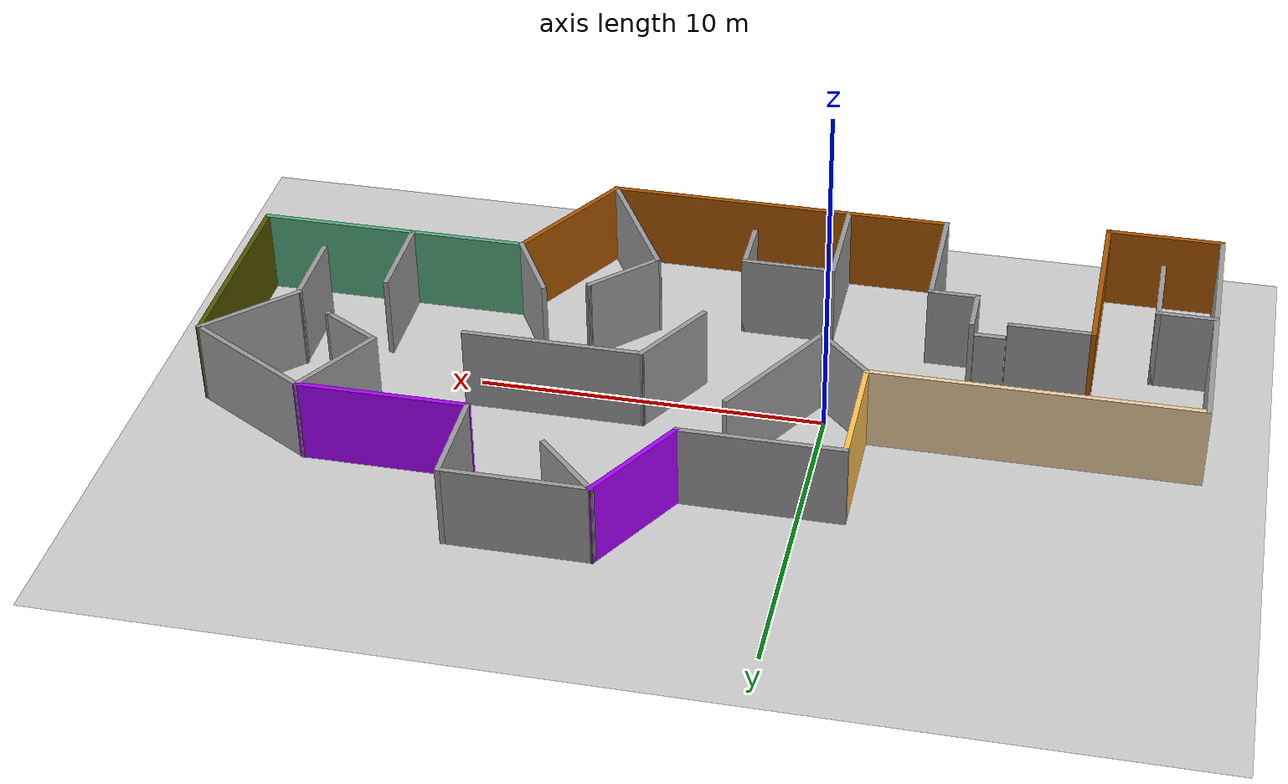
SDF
<sdf version="1.6">
 <world name="default">
  <light name="sun" type="directional">
   <pose>0 0 10 0 -0 0</pose>
   <diffuse>0.8 0.8 0.8 1</diffuse>
   <specular>0.2 0.2 0.2 1</specular>
   <attenuation>
    <range>1000</range>
    <constant>0.9</constant>
    <linear>0.01</linear>
    <quadratic>0.001</quadratic>
   </attenuation>
   <direction>-0.5 0.1 -0.9</direction>
  </light>
  <model name="ground_plane">
   <static>1</static>
   <link name="link">
    <collision name="collision">
     <geometry><plane><normal>0 0 1</normal><size>100 100</size></plane></geometry>
     <surface>
      <contact><collide_bitmask>65535</collide_bitmask></contact>
      <friction><ode><mu>100</mu><mu2>50</mu2></ode></friction>
     </surface>
    </collision>
    <visual name="visual">
     <cast_shadows>0</cast_shadows>
     <geometry><plane><normal>0 0 1</normal><size>100 100</size></plane></geometry>
     <material>
      <script><uri>file://media/materials/scripts/gazebo.material</uri><name>Gazebo/Grey</name></script>
     </material>
    </visual>
   </link>
  </model>
  <gravity>0 0 -9.8</gravity>
  <magnetic_field>6e-06 2.3e-05 -4.2e-05</magnetic_field>
  <atmosphere type="adiabatic"/>
  <physics name="default_physics" default="0" type="ode">
   <max_step_size>0.001</max_step_size>
   <real_time_factor>1</real_time_factor>
   <real_time_update_rate>1000</real_time_update_rate>
  </physics>
  <scene><ambient>0.4 0.4 0.4 1</ambient><background>0.7 0.7 0.7 1</background><shadows>1</shadows></scene>
  <spherical_coordinates>
   <surface_model>EARTH_WGS84</surface_model>
   <latitude_deg>0</latitude_deg>
   <longitude_deg>0</longitude_deg>
   <elevation>0</elevation>
   <heading_deg>0</heading_deg>
  </spherical_coordinates>
  <model name="Building">
   <pose>3.48268 -0.26936 0 0 -0 0</pose>
   <link name="Door_0">
    <collision name="Door_0_Collision">
     <geometry><box><size>0.9 0.17 2</size></box></geometry>
     <pose>0 0 1 0 -0 0</pose>
    </collision>
    <visual name="Door_0_Visual">
     <pose>0 0 1 0 -0 0</pose>
     <geometry><box><size>0.9 0.17 2</size></box></geometry>
     <material>
      <script><uri>file://media/materials/scripts/gazebo.material</uri><name>Gazebo/Grey</name></script>
     </material>
    </visual>
    <pose>-7.81872 -2.12521 0 0 -0 0</pose>
   </link>
   <link name="Wall_0">
    <collision name="Wall_0_Collision">
     <geometry><box><size>1.5 0.15 2.5</size></box></geometry>
     <pose>0 0 1.25 0 -0 0</pose>
    </collision>
    <visual name="Wall_0_Visual">
     <pose>0 0 1.25 0 -0 0</pose>
     <geometry><box><size>1.5 0.15 2.5</size></box></geometry>
     <material>
      <script><uri>file://media/materials/scripts/gazebo.material</uri><name>Gazebo/Grey</name></script>
      <ambient>1 1 1 1</ambient>
     </material>
     <meta><layer>0</layer></meta>
    </visual>
    <pose>-7.30268 -2.61564 0 0 0 -1.5708</pose>
   </link>
   <link name="Wall_1">
    <collision name="Wall_1_Collision">
     <geometry><box><size>1.5 0.15 2.5</size></box></geometry>
     <pose>0 0 1.25 0 -0 0</pose>
    </collision>
    <visual name="Wall_1_Visual">
     <pose>0 0 1.25 0 -0 0</pose>
     <geometry><box><size>1.5 0.15 2.5</size></box></geometry>
     <material>
      <script><uri>file://media/materials/scripts/gazebo.material</uri><name>Gazebo/Grey</name></script>
      <ambient>1 1 1 1</ambient>
     </material>
     <meta><layer>0</layer></meta>
    </visual>
    <pose>-6.62768 -3.29064 0 0 -0 0</pose>
   </link>
   <link name="Wall_10">
    <collision name="Wall_10_Collision">
     <geometry><box><size>4.25 0.15 2.5</size></box></geometry>
     <pose>0 0 1.25 0 -0 0</pose>
    </collision>
    <visual name="Wall_10_Visual">
     <pose>0 0 1.25 0 -0 0</pose>
     <geometry><box><size>4.25 0.15 2.5</size></box></geometry>
     <material>
      <script><uri>file://media/materials/scripts/gazebo.material</uri><name>Gazebo/Grey</name></script>
      <ambient>1 1 1 1</ambient>
     </material>
     <meta><layer>0</layer></meta>
    </visual>
    <pose>3.59661 7.41006 0 0 -0 3.14159</pose>
   </link>
   <link name="Wall_11">
    <collision name="Wall_11_Collision">
     <geometry><box><size>3.5 0.15 2.5</size></box></geometry>
     <pose>0 0 1.25 0 -0 0</pose>
    </collision>
    <visual name="Wall_11_Visual">
     <pose>0 0 1.25 0 -0 0</pose>
     <geometry><box><size>3.5 0.15 2.5</size></box></geometry>
     <material>
      <script><uri>file://media/materials/scripts/gazebo.material</uri><name>Gazebo/Grey</name></script>
      <ambient>0.666667 0 1 1</ambient>
     </material>
     <meta><layer>0</layer></meta>
    </visual>
    <pose>0.709115 5.95947 0 0 0 -2.0944</pose>
   </link>
   <link name="Wall_12">
    <collision name="Wall_12_Collision">
     <geometry><box><size>4.75 0.15 2.5</size></box></geometry>
     <pose>0 0 1.25 0 -0 0</pose>
    </collision>
    <visual name="Wall_12_Visual">
     <pose>0 0 1.25 0 -0 0</pose>
     <geometry><box><size>4.75 0.15 2.5</size></box></geometry>
     <material>
      <script><uri>file://media/materials/scripts/gazebo.material</uri><name>Gazebo/Grey</name></script>
      <ambient>1 1 1 1</ambient>
     </material>
     <meta><layer>0</layer></meta>
    </visual>
    <pose>-2.42839 4.50887 0 0 -0 3.14159</pose>
   </link>
   <link name="Wall_13">
    <collision name="Wall_13_Collision">
     <geometry><box><size>3.75 0.15 2.5</size></box></geometry>
     <pose>0 0 1.25 0 -0 0</pose>
    </collision>
    <visual name="Wall_13_Visual">
     <pose>0 0 1.25 0 -0 0</pose>
     <geometry><box><size>3.75 0.15 2.5</size></box></geometry>
     <material>
      <script><uri>file://media/materials/scripts/gazebo.material</uri><name>Gazebo/Grey</name></script>
      <ambient>1 0.764706 0.305882 1</ambient>
     </material>
     <meta><layer>0</layer></meta>
    </visual>
    <pose>-4.72839 2.70887 0 0 0 -1.5708</pose>
   </link>
   <link name="Wall_14">
    <collision name="Wall_14_Collision">
     <geometry><box><size>9.5 0.15 2.5</size></box></geometry>
     <pose>0 0 1.25 0 -0 0</pose>
    </collision>
    <visual name="Wall_14_Visual">
     <pose>0 0 1.25 0 -0 0</pose>
     <geometry><box><size>9.5 0.15 2.5</size></box></geometry>
     <material>
      <script><uri>file://media/materials/scripts/gazebo.material</uri><name>Gazebo/Grey</name></script>
      <ambient>0.921569 0.807843 0.615686 1</ambient>
     </material>
     <meta><layer>0</layer></meta>
    </visual>
    <pose>-9.40339 0.908875 0 0 -0 3.14159</pose>
   </link>
   <link name="Wall_15">
    <collision name="Wall_15_Collision">
     <geometry><box><size>8.5 0.15 2.5</size></box></geometry>
     <pose>0 0 1.25 0 -0 0</pose>
    </collision>
    <visual name="Wall_15_Visual">
     <pose>0 0 1.25 0 -0 0</pose>
     <geometry><box><size>8.5 0.15 2.5</size></box></geometry>
     <material>
      <script><uri>file://media/materials/scripts/gazebo.material</uri><name>Gazebo/Grey</name></script>
      <ambient>1 1 1 1</ambient>
     </material>
     <meta><layer>0</layer></meta>
    </visual>
    <pose>-14.0784 -3.26613 0 0 0 -1.5708</pose>
   </link>
   <link name="Wall_16">
    <collision name="Wall_16_Collision">
     <geometry><box><size>3.5 0.15 2.5</size></box></geometry>
     <pose>0 0 1.25 0 -0 0</pose>
    </collision>
    <visual name="Wall_16_Visual">
     <pose>0 0 1.25 0 -0 0</pose>
     <geometry><box><size>3.5 0.15 2.5</size></box></geometry>
     <material>
      <script><uri>file://media/materials/scripts/gazebo.material</uri><name>Gazebo/Grey</name></script>
      <ambient>0.666667 0.333333 0 1</ambient>
     </material>
     <meta><layer>0</layer></meta>
    </visual>
    <pose>-12.4034 -7.44113 0 0 -0 0</pose>
   </link>
   <link name="Wall_17">
    <collision name="Wall_17_Collision">
     <geometry><box><size>5.5 0.15 2.5</size></box></geometry>
     <pose>0 0 1.25 0 -0 0</pose>
    </collision>
    <visual name="Wall_17_Visual">
     <pose>0 0 1.25 0 -0 0</pose>
     <geometry><box><size>5.5 0.15 2.5</size></box></geometry>
     <material>
      <script><uri>file://media/materials/scripts/gazebo.material</uri><name>Gazebo/Grey</name></script>
      <ambient>0.666667 0.333333 0 1</ambient>
     </material>
     <meta><layer>0</layer></meta>
    </visual>
    <pose>-10.7284 -4.76612 0 0 -0 1.5708</pose>
   </link>
   <link name="Wall_18">
    <collision name="Wall_18_Collision">
     <geometry><box><size>2.5 0.15 2.5</size></box></geometry>
     <pose>0 0 1.25 0 -0 0</pose>
    </collision>
    <visual name="Wall_18_Visual">
     <pose>0 0 1.25 0 -0 0</pose>
     <geometry><box><size>2.5 0.15 2.5</size></box></geometry>
     <material>
      <script><uri>file://media/materials/scripts/gazebo.material</uri><name>Gazebo/Grey</name></script>
      <ambient>1 1 1 1</ambient>
     </material>
     <meta><layer>0</layer></meta>
    </visual>
    <pose>-9.55339 -2.09112 0 0 -0 0</pose>
   </link>
   <link name="Wall_19">
    <collision name="Wall_19_Collision">
     <geometry><box><size>0.16 0.15 2.5</size></box></geometry>
     <pose>0 0 1.25 0 -0 0</pose>
    </collision>
    <visual name="Wall_19_Visual">
     <pose>0 0 1.25 0 -0 0</pose>
     <geometry><box><size>0.16 0.15 2.5</size></box></geometry>
     <material>
      <script><uri>file://media/materials/scripts/gazebo.material</uri><name>Gazebo/Grey</name></script>
      <ambient>1 1 1 1</ambient>
     </material>
     <meta><layer>0</layer></meta>
    </visual>
    <pose>-8.37339 -2.09112 0 0 -0 0</pose>
   </link>
   <link name="Wall_2">
    <collision name="Wall_2_Collision">
     <geometry><box><size>3.75 0.15 2.5</size></box></geometry>
     <pose>0 0 1.25 0 -0 0</pose>
    </collision>
    <visual name="Wall_2_Visual">
     <pose>0 0 1.25 0 -0 0</pose>
     <geometry><box><size>3.75 0.15 2.5</size></box></geometry>
     <material>
      <script><uri>file://media/materials/scripts/gazebo.material</uri><name>Gazebo/Grey</name></script>
      <ambient>1 1 1 1</ambient>
     </material>
     <meta><layer>0</layer></meta>
    </visual>
    <pose>-5.95268 -5.09065 0 0 0 -1.5708</pose>
   </link>
   <link name="Wall_21">
    <collision name="Wall_21_Collision">
     <geometry><box><size>3.25 0.15 2.5</size></box></geometry>
     <pose>0 0 1.25 0 -0 0</pose>
    </collision>
    <visual name="Wall_21_Visual">
     <pose>0 0 1.25 0 -0 0</pose>
     <geometry><box><size>3.25 0.15 2.5</size></box></geometry>
     <material>
      <script><uri>file://media/materials/scripts/gazebo.material</uri><name>Gazebo/Grey</name></script>
      <ambient>1 1 1 1</ambient>
     </material>
     <meta><layer>0</layer></meta>
    </visual>
    <pose>-3.01531 -5.33298 0 0 -0 1.5708</pose>
   </link>
   <link name="Wall_22">
    <collision name="Wall_22_Collision">
     <geometry><box><size>2.75 0.15 2.5</size></box></geometry>
     <pose>0 0 1.25 0 -0 0</pose>
    </collision>
    <visual name="Wall_22_Visual">
     <pose>0 0 1.25 0 -0 0</pose>
     <geometry><box><size>2.75 0.15 2.5</size></box></geometry>
     <material>
      <script><uri>file://media/materials/scripts/gazebo.material</uri><name>Gazebo/Grey</name></script>
      <ambient>1 1 1 1</ambient>
     </material>
     <meta><layer>0</layer></meta>
    </visual>
    <pose>-1.71531 -3.78298 0 0 -0 0</pose>
   </link>
   <link name="Wall_23">
    <collision name="Wall_23_Collision">
     <geometry><box><size>1.75 0.15 2.5</size></box></geometry>
     <pose>0 0 1.25 0 -0 0</pose>
    </collision>
    <visual name="Wall_23_Visual">
     <pose>0 0 1.25 0 -0 0</pose>
     <geometry><box><size>1.75 0.15 2.5</size></box></geometry>
     <material>
      <script><uri>file://media/materials/scripts/gazebo.material</uri><name>Gazebo/Grey</name></script>
      <ambient>1 1 1 1</ambient>
     </material>
     <meta><layer>0</layer></meta>
    </visual>
    <pose>-0.415306 -4.58298 0 0 0 -1.5708</pose>
   </link>
   <link name="Wall_25">
    <collision name="Wall_25_Collision">
     <geometry><box><size>2.25 0.15 2.5</size></box></geometry>
     <pose>0 0 1.25 0 -0 0</pose>
    </collision>
    <visual name="Wall_25_Visual">
     <pose>0 0 1.25 0 -0 0</pose>
     <geometry><box><size>2.25 0.15 2.5</size></box></geometry>
     <material>
      <script><uri>file://media/materials/scripts/gazebo.material</uri><name>Gazebo/Grey</name></script>
      <ambient>1 1 1 1</ambient>
     </material>
     <meta><layer>0</layer></meta>
    </visual>
    <pose>-3.98592 0.166412 0 0 0 -0.785398</pose>
   </link>
   <link name="Wall_26">
    <collision name="Wall_26_Collision">
     <geometry><box><size>4.25 0.15 2.5</size></box></geometry>
     <pose>0 0 1.25 0 -0 0</pose>
    </collision>
    <visual name="Wall_26_Visual">
     <pose>0 0 1.25 0 -0 0</pose>
     <geometry><box><size>4.25 0.15 2.5</size></box></geometry>
     <material>
      <script><uri>file://media/materials/scripts/gazebo.material</uri><name>Gazebo/Grey</name></script>
      <ambient>1 1 1 1</ambient>
     </material>
     <meta><layer>0</layer></meta>
    </visual>
    <pose>-2.21846 1.1993 0 0 -0 1.0472</pose>
   </link>
   <link name="Wall_28">
    <collision name="Wall_28_Collision">
     <geometry><box><size>2.5 0.15 2.5</size></box></geometry>
     <pose>0 0 1.25 0 -0 0</pose>
    </collision>
    <visual name="Wall_28_Visual">
     <pose>0 0 1.25 0 -0 0</pose>
     <geometry><box><size>2.5 0.15 2.5</size></box></geometry>
     <material>
      <script><uri>file://media/materials/scripts/gazebo.material</uri><name>Gazebo/Grey</name></script>
      <ambient>1 1 1 1</ambient>
     </material>
     <meta><layer>0</layer></meta>
    </visual>
    <pose>2.37747 6.57921 0 0 0 -0.785398</pose>
   </link>
   <link name="Wall_3">
    <collision name="Wall_3_Collision">
     <geometry><box><size>10.25 0.15 2.5</size></box></geometry>
     <pose>0 0 1.25 0 -0 0</pose>
    </collision>
    <visual name="Wall_3_Visual">
     <pose>0 0 1.25 0 -0 0</pose>
     <geometry><box><size>10.25 0.15 2.5</size></box></geometry>
     <material>
      <script><uri>file://media/materials/scripts/gazebo.material</uri><name>Gazebo/Grey</name></script>
      <ambient>0.666667 0.333333 0 1</ambient>
     </material>
     <meta><layer>0</layer></meta>
    </visual>
    <pose>-0.902681 -6.89064 0 0 -0 0</pose>
   </link>
   <link name="Wall_30">
    <collision name="Wall_30_Collision">
     <geometry><box><size>3 0.15 2.5</size></box></geometry>
     <pose>0 0 1.25 0 -0 0</pose>
    </collision>
    <visual name="Wall_30_Visual">
     <pose>0 0 1.25 0 -0 0</pose>
     <geometry><box><size>3 0.15 2.5</size></box></geometry>
     <material>
      <script><uri>file://media/materials/scripts/gazebo.material</uri><name>Gazebo/Grey</name></script>
      <ambient>1 1 1 1</ambient>
     </material>
     <meta><layer>0</layer></meta>
    </visual>
    <pose>9.78411 3.32597 0 0 0 -2.0944</pose>
   </link>
   <link name="Wall_32">
    <collision name="Wall_32_Collision">
     <geometry><box><size>3.25 0.15 2.5</size></box></geometry>
     <pose>0 0 1.25 0 -0 0</pose>
    </collision>
    <visual name="Wall_32_Visual">
     <pose>0 0 1.25 0 -0 0</pose>
     <geometry><box><size>3.25 0.15 2.5</size></box></geometry>
     <material>
      <script><uri>file://media/materials/scripts/gazebo.material</uri><name>Gazebo/Grey</name></script>
      <ambient>1 1 1 1</ambient>
     </material>
     <meta><layer>0</layer></meta>
    </visual>
    <pose>12.9513 1.41404 0 0 0 -2.35619</pose>
   </link>
   <link name="Wall_33">
    <collision name="Wall_33_Collision">
     <geometry><box><size>0.16 0.15 2.5</size></box></geometry>
     <pose>0 0 1.25 0 -0 0</pose>
    </collision>
    <visual name="Wall_33_Visual">
     <pose>0 0 1.25 0 -0 0</pose>
     <geometry><box><size>0.16 0.15 2.5</size></box></geometry>
     <material>
      <script><uri>file://media/materials/scripts/gazebo.material</uri><name>Gazebo/Grey</name></script>
      <ambient>1 1 1 1</ambient>
     </material>
     <meta><layer>0</layer></meta>
    </visual>
    <pose>11.8603 0.318029 0 0 -0 0</pose>
   </link>
   <link name="Wall_34">
    <collision name="Wall_34_Collision">
     <geometry><box><size>0.16 0.15 2.5</size></box></geometry>
     <pose>0 0 1.25 0 -0 0</pose>
    </collision>
    <visual name="Wall_34_Visual">
     <pose>0 0 1.25 0 -0 0</pose>
     <geometry><box><size>0.16 0.15 2.5</size></box></geometry>
     <material>
      <script><uri>file://media/materials/scripts/gazebo.material</uri><name>Gazebo/Grey</name></script>
      <ambient>1 1 1 1</ambient>
     </material>
     <meta><layer>0</layer></meta>
    </visual>
    <pose>11.8603 0.318029 0 0 -0 3.14159</pose>
   </link>
   <link name="Wall_36">
    <collision name="Wall_36_Collision">
     <geometry><box><size>2.75 0.15 2.5</size></box></geometry>
     <pose>0 0 1.25 0 -0 0</pose>
    </collision>
    <visual name="Wall_36_Visual">
     <pose>0 0 1.25 0 -0 0</pose>
     <geometry><box><size>2.75 0.15 2.5</size></box></geometry>
     <material>
      <script><uri>file://media/materials/scripts/gazebo.material</uri><name>Gazebo/Grey</name></script>
      <ambient>1 1 1 1</ambient>
     </material>
     <meta><layer>0</layer></meta>
    </visual>
    <pose>9.54615 -2.00063 0 0 -0 1.5708</pose>
   </link>
   <link name="Wall_38">
    <collision name="Wall_38_Collision">
     <geometry><box><size>2.5 0.15 2.5</size></box></geometry>
     <pose>0 0 1.25 0 -0 0</pose>
    </collision>
    <visual name="Wall_38_Visual">
     <pose>0 0 1.25 0 -0 0</pose>
     <geometry><box><size>2.5 0.15 2.5</size></box></geometry>
     <material>
      <script><uri>file://media/materials/scripts/gazebo.material</uri><name>Gazebo/Grey</name></script>
      <ambient>1 1 1 1</ambient>
     </material>
     <meta><layer>0</layer></meta>
    </visual>
    <pose>5.60982 -2.32236 0 0 -0 2.0944</pose>
   </link>
   <link name="Wall_4">
    <collision name="Wall_4_Collision">
     <geometry><box><size>4.25 0.15 2.5</size></box></geometry>
     <pose>0 0 1.25 0 -0 0</pose>
    </collision>
    <visual name="Wall_4_Visual">
     <pose>0 0 1.25 0 -0 0</pose>
     <geometry><box><size>4.25 0.15 2.5</size></box></geometry>
     <material>
      <script><uri>file://media/materials/scripts/gazebo.material</uri><name>Gazebo/Grey</name></script>
      <ambient>0.666667 0.333333 0 1</ambient>
     </material>
     <meta><layer>0</layer></meta>
    </visual>
    <pose>5.17232 -5.11529 0 0 -0 1.0472</pose>
   </link>
   <link name="Wall_40">
    <collision name="Wall_40_Collision">
     <geometry><box><size>4.25 0.15 2.5</size></box></geometry>
     <pose>0 0 1.25 0 -0 0</pose>
    </collision>
    <visual name="Wall_40_Visual">
     <pose>0 0 1.25 0 -0 0</pose>
     <geometry><box><size>4.25 0.15 2.5</size></box></geometry>
     <material>
      <script><uri>file://media/materials/scripts/gazebo.material</uri><name>Gazebo/Grey</name></script>
      <ambient>1 1 1 1</ambient>
     </material>
     <meta><layer>0</layer></meta>
    </visual>
    <pose>3.12232 -5.11529 0 0 -0 2.0944</pose>
   </link>
   <link name="Wall_41">
    <collision name="Wall_41_Collision">
     <geometry><box><size>2.5 0.15 2.5</size></box></geometry>
     <pose>0 0 1.25 0 -0 0</pose>
    </collision>
    <visual name="Wall_41_Visual">
     <pose>0 0 1.25 0 -0 0</pose>
     <geometry><box><size>2.5 0.15 2.5</size></box></geometry>
     <material>
      <script><uri>file://media/materials/scripts/gazebo.material</uri><name>Gazebo/Grey</name></script>
      <ambient>1 1 1 1</ambient>
     </material>
     <meta><layer>0</layer></meta>
    </visual>
    <pose>2.92817 -2.50909 0 0 -0 0.785398</pose>
   </link>
   <link name="Wall_42">
    <collision name="Wall_42_Collision">
     <geometry><box><size>0.16 0.15 2.5</size></box></geometry>
     <pose>0 0 1.25 0 -0 0</pose>
    </collision>
    <visual name="Wall_42_Visual">
     <pose>0 0 1.25 0 -0 0</pose>
     <geometry><box><size>0.16 0.15 2.5</size></box></geometry>
     <material>
      <script><uri>file://media/materials/scripts/gazebo.material</uri><name>Gazebo/Grey</name></script>
      <ambient>1 1 1 1</ambient>
     </material>
     <meta><layer>0</layer></meta>
    </visual>
    <pose>3.76402 -1.67824 0 0 -0 0</pose>
   </link>
   <link name="Wall_44">
    <collision name="Wall_44_Collision">
     <geometry><box><size>5.25 0.15 2.5</size></box></geometry>
     <pose>0 0 1.25 0 -0 0</pose>
    </collision>
    <visual name="Wall_44_Visual">
     <pose>0 0 1.25 0 -0 0</pose>
     <geometry><box><size>5.25 0.15 2.5</size></box></geometry>
     <material>
      <script><uri>file://media/materials/scripts/gazebo.material</uri><name>Gazebo/Grey</name></script>
      <ambient>1 1 1 1</ambient>
     </material>
     <meta><layer>0</layer></meta>
    </visual>
    <pose>4.09404 1.30523 0 0 -0 0</pose>
   </link>
   <link name="Wall_46">
    <collision name="Wall_46_Collision">
     <geometry><box><size>2.75 0.15 2.5</size></box></geometry>
     <pose>0 0 1.25 0 -0 0</pose>
    </collision>
    <visual name="Wall_46_Visual">
     <pose>0 0 1.25 0 -0 0</pose>
     <geometry><box><size>2.75 0.15 2.5</size></box></geometry>
     <material>
      <script><uri>file://media/materials/scripts/gazebo.material</uri><name>Gazebo/Grey</name></script>
      <ambient>1 1 1 1</ambient>
     </material>
     <meta><layer>0</layer></meta>
    </visual>
    <pose>0.894038 0.179399 0 0 0 -2.0944</pose>
   </link>
   <link name="Wall_48">
    <collision name="Wall_48_Collision">
     <geometry><box><size>1.75 0.15 2.5</size></box></geometry>
     <pose>0 0 1.25 0 -0 0</pose>
    </collision>
    <visual name="Wall_48_Visual">
     <pose>0 0 1.25 0 -0 0</pose>
     <geometry><box><size>1.75 0.15 2.5</size></box></geometry>
     <material>
      <script><uri>file://media/materials/scripts/gazebo.material</uri><name>Gazebo/Grey</name></script>
      <ambient>1 1 1 1</ambient>
     </material>
     <meta><layer>0</layer></meta>
    </visual>
    <pose>-13.2415 -3.48673 0 0 -0 0</pose>
   </link>
   <link name="Wall_49">
    <collision name="Wall_49_Collision">
     <geometry><box><size>2.5 0.15 2.5</size></box></geometry>
     <pose>0 0 1.25 0 -0 0</pose>
    </collision>
    <visual name="Wall_49_Visual">
     <pose>0 0 1.25 0 -0 0</pose>
     <geometry><box><size>2.5 0.15 2.5</size></box></geometry>
     <material>
      <script><uri>file://media/materials/scripts/gazebo.material</uri><name>Gazebo/Grey</name></script>
      <ambient>1 1 1 1</ambient>
     </material>
     <meta><layer>0</layer></meta>
    </visual>
    <pose>-12.4415 -4.66173 0 0 0 -1.5708</pose>
   </link>
   <link name="Wall_5">
    <collision name="Wall_5_Collision">
     <geometry><box><size>8 0.15 2.5</size></box></geometry>
     <pose>0 0 1.25 0 -0 0</pose>
    </collision>
    <visual name="Wall_5_Visual">
     <pose>0 0 1.25 0 -0 0</pose>
     <geometry><box><size>8 0.15 2.5</size></box></geometry>
     <material>
      <script><uri>file://media/materials/scripts/gazebo.material</uri><name>Gazebo/Grey</name></script>
      <ambient>0.333333 0.666667 0.498039 1</ambient>
     </material>
     <meta><layer>0</layer></meta>
    </visual>
    <pose>10.1223 -3.33994 0 0 -0 0</pose>
   </link>
   <link name="Wall_51">
    <collision name="Wall_51_Collision">
     <geometry><box><size>2 0.15 2.5</size></box></geometry>
     <pose>0 0 1.25 0 -0 0</pose>
    </collision>
    <visual name="Wall_51_Visual">
     <pose>0 0 1.25 0 -0 0</pose>
     <geometry><box><size>2 0.15 2.5</size></box></geometry>
     <material>
      <script><uri>file://media/materials/scripts/gazebo.material</uri><name>Gazebo/Grey</name></script>
      <ambient>1 1 1 1</ambient>
     </material>
     <meta><layer>0</layer></meta>
    </visual>
    <pose>9.87269 1.62939 0 0 0 -0.523599</pose>
   </link>
   <link name="Wall_52">
    <collision name="Wall_52_Collision">
     <geometry><box><size>0.16 0.15 2.5</size></box></geometry>
     <pose>0 0 1.25 0 -0 0</pose>
    </collision>
    <visual name="Wall_52_Visual">
     <pose>0 0 1.25 0 -0 0</pose>
     <geometry><box><size>0.16 0.15 2.5</size></box></geometry>
     <material>
      <script><uri>file://media/materials/scripts/gazebo.material</uri><name>Gazebo/Grey</name></script>
      <ambient>1 1 1 1</ambient>
     </material>
     <meta><layer>0</layer></meta>
    </visual>
    <pose>10.6788 1.16689 0 0 -0 0</pose>
   </link>
   <link name="Wall_54">
    <collision name="Wall_54_Collision">
     <geometry><box><size>2.5 0.15 2.5</size></box></geometry>
     <pose>0 0 1.25 0 -0 0</pose>
    </collision>
    <visual name="Wall_54_Visual">
     <pose>0 0 1.25 0 -0 0</pose>
     <geometry><box><size>2.5 0.15 2.5</size></box></geometry>
     <material>
      <script><uri>file://media/materials/scripts/gazebo.material</uri><name>Gazebo/Grey</name></script>
      <ambient>1 1 1 1</ambient>
     </material>
     <meta><layer>0</layer></meta>
    </visual>
    <pose>11.8653 -0.856971 0 0 0 -1.5708</pose>
   </link>
   <link name="Wall_6">
    <collision name="Wall_6_Collision">
     <geometry><box><size>6 0.15 2.5</size></box></geometry>
     <pose>0 0 1.25 0 -0 0</pose>
    </collision>
    <visual name="Wall_6_Visual">
     <pose>0 0 1.25 0 -0 0</pose>
     <geometry><box><size>6 0.15 2.5</size></box></geometry>
     <material>
      <script><uri>file://media/materials/scripts/gazebo.material</uri><name>Gazebo/Grey</name></script>
      <ambient>0.333333 0.333333 0 1</ambient>
     </material>
     <meta><layer>0</layer></meta>
    </visual>
    <pose>14.0473 -0.41494 0 0 -0 1.5708</pose>
   </link>
   <link name="Wall_7">
    <collision name="Wall_7_Collision">
     <geometry><box><size>4.25 0.15 2.5</size></box></geometry>
     <pose>0 0 1.25 0 -0 0</pose>
    </collision>
    <visual name="Wall_7_Visual">
     <pose>0 0 1.25 0 -0 0</pose>
     <geometry><box><size>4.25 0.15 2.5</size></box></geometry>
     <material>
      <script><uri>file://media/materials/scripts/gazebo.material</uri><name>Gazebo/Grey</name></script>
      <ambient>1 1 1 1</ambient>
     </material>
     <meta><layer>0</layer></meta>
    </visual>
    <pose>12.272 3.53506 0 0 -0 2.61799</pose>
   </link>
   <link name="Wall_8">
    <collision name="Wall_8_Collision">
     <geometry><box><size>5 0.15 2.5</size></box></geometry>
     <pose>0 0 1.25 0 -0 0</pose>
    </collision>
    <visual name="Wall_8_Visual">
     <pose>0 0 1.25 0 -0 0</pose>
     <geometry><box><size>5 0.15 2.5</size></box></geometry>
     <material>
      <script><uri>file://media/materials/scripts/gazebo.material</uri><name>Gazebo/Grey</name></script>
      <ambient>0.666667 0 1 1</ambient>
     </material>
     <meta><layer>0</layer></meta>
    </visual>
    <pose>8.07161 4.56006 0 0 -0 3.14159</pose>
   </link>
   <link name="Wall_9">
    <collision name="Wall_9_Collision">
     <geometry><box><size>3 0.15 2.5</size></box></geometry>
     <pose>0 0 1.25 0 -0 0</pose>
    </collision>
    <visual name="Wall_9_Visual">
     <pose>0 0 1.25 0 -0 0</pose>
     <geometry><box><size>3 0.15 2.5</size></box></geometry>
     <material>
      <script><uri>file://media/materials/scripts/gazebo.material</uri><name>Gazebo/Grey</name></script>
      <ambient>1 1 1 1</ambient>
     </material>
     <meta><layer>0</layer></meta>
    </visual>
    <pose>5.64662 5.98506 0 0 -0 1.5708</pose>
   </link>
   <static>1</static>
  </model>
  <model name="my_ball">
   <link name="link_0">
    <inertial>
     <mass>1</mass>
     <inertia><ixx>0.1</ixx><ixy>0</ixy><ixz>0</ixz><iyy>0.1</iyy><iyz>0</iyz><izz>0.1</izz></inertia>
    </inertial>
    <visual name="visual">
     <geometry><sphere><radius>0.1</radius></sphere></geometry>
     <material>
      <lighting>1</lighting>
      <script><uri>file://media/materials/scripts/gazebo.material</uri><name>Gazebo/White</name></script>
      <shader type="pixel"><normal_map>__default__</normal_map></shader>
      <ambient>1 1 1 1</ambient>
      <diffuse>1 1 1 1</diffuse>
      <specular>1 1 1 1</specular>
      <emissive>1 1 1 1</emissive>
     </material>
    </visual>
    <collision name="collision">
     <geometry><sphere><radius>0.1</radius></sphere></geometry>
     <surface>
      <friction>
       <ode><mu>1</mu><mu2>1</mu2><fdir1>0 0 0</fdir1><slip1>0</slip1><slip2>0</slip2></ode>
       <torsional>
        <coefficient>1</coefficient>
        <patch_radius>0</patch_radius>
        <surface_radius>0</surface_radius>
        <use_patch_radius>1</use_patch_radius>
        <ode><slip>0</slip></ode>
       </torsional>
      </friction>
      <bounce><restitution_coefficient>0</restitution_coefficient><threshold>1e+06</threshold></bounce>
      <contact>
       <collide_without_contact>0</collide_without_contact>
       <collide_without_contact_bitmask>1</collide_without_contact_bitmask>
       <collide_bitmask>1</collide_bitmask>
       <ode>
        <soft_cfm>0</soft_cfm>
        <soft_erp>0.2</soft_erp>
        <kp>1e+13</kp>
        <kd>1</kd>
        <max_vel>0.01</max_vel>
        <min_depth>0</min_depth>
       </ode>
       <bullet>
        <split_impulse>1</split_impulse>
        <split_impulse_penetration_threshold>-0.01</split_impulse_penetration_threshold>
        <soft_cfm>0</soft_cfm>
        <soft_erp>0.2</soft_erp>
        <kp>1e+13</kp>
        <kd>1</kd>
       </bullet>
      </contact>
     </surface>
    </collision>
   </link>
   <static>0</static>
   <pose>-4.84677 -5.60723 0.1 0 -0 0</pose>
  </model>
 </world>
</sdf>
